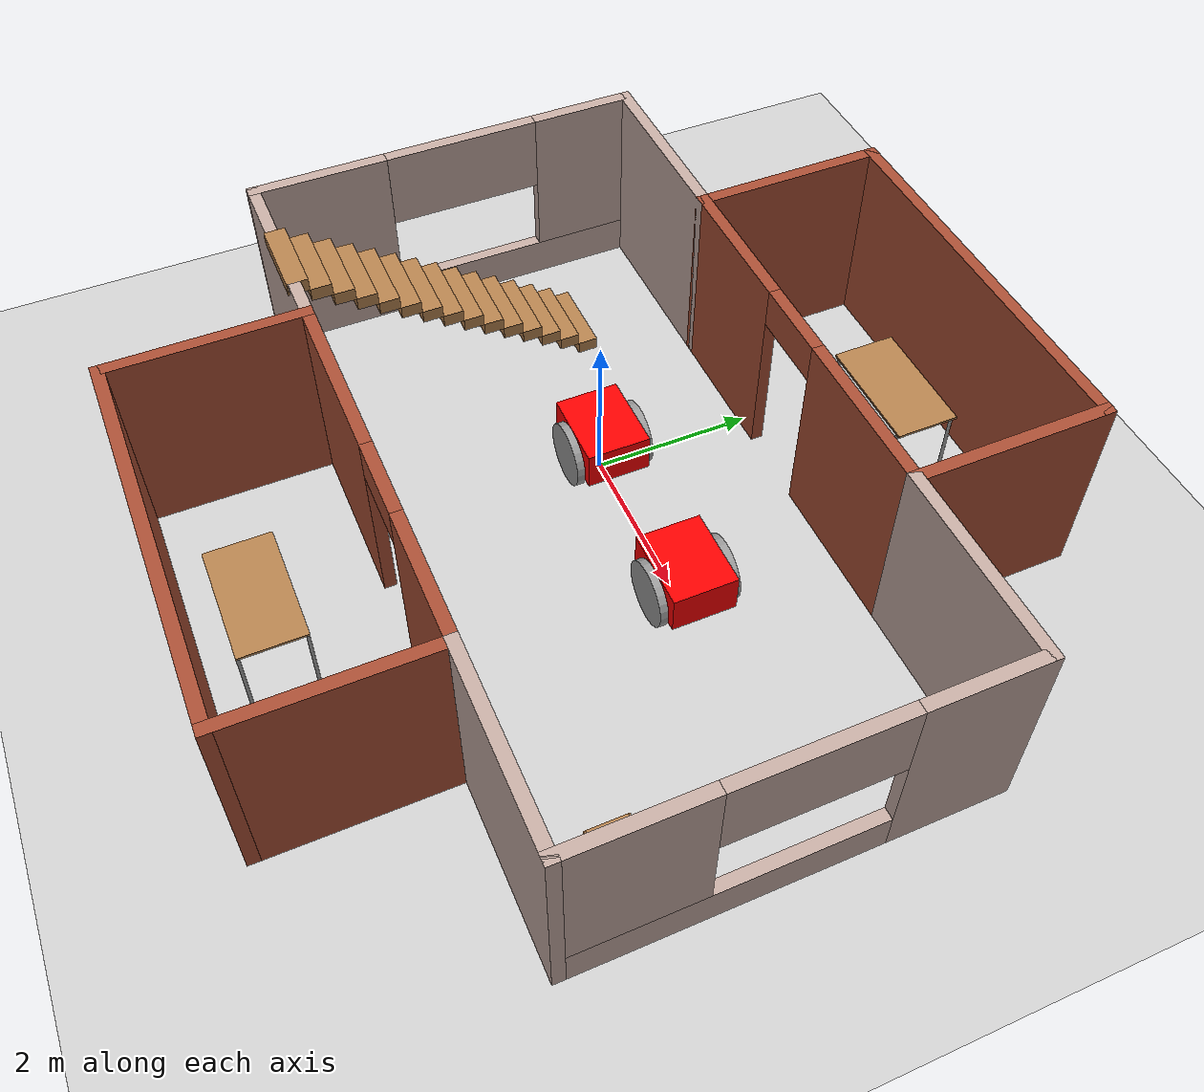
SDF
<sdf version="1.6">
 <world name="default">
  <plugin name="project1" filename="libproject1.so"/>
  <light name="sun" type="directional">
   <pose>0 0 10 0 -0 0</pose>
   <diffuse>0.8 0.8 0.8 1</diffuse>
   <specular>0.2 0.2 0.2 1</specular>
   <attenuation>
    <range>1000</range>
    <constant>0.9</constant>
    <linear>0.01</linear>
    <quadratic>0.001</quadratic>
   </attenuation>
   <direction>-0.5 0.1 -0.9</direction>
  </light>
  <model name="ground_plane">
   <static>1</static>
   <link name="link">
    <collision name="collision">
     <geometry><plane><normal>0 0 1</normal><size>100 100</size></plane></geometry>
     <surface>
      <contact><collide_bitmask>65535</collide_bitmask></contact>
      <friction><ode><mu>100</mu><mu2>50</mu2></ode></friction>
     </surface>
    </collision>
    <visual name="visual">
     <cast_shadows>0</cast_shadows>
     <geometry><plane><normal>0 0 1</normal><size>100 100</size></plane></geometry>
     <material>
      <script><uri>file://media/materials/scripts/gazebo.material</uri><name>Gazebo/Grey</name></script>
     </material>
    </visual>
   </link>
  </model>
  <gravity>0 0 -9.8</gravity>
  <magnetic_field>6e-06 2.3e-05 -4.2e-05</magnetic_field>
  <atmosphere type="adiabatic"/>
  <physics name="default_physics" default="0" type="ode">
   <max_step_size>0.001</max_step_size>
   <real_time_factor>1</real_time_factor>
   <real_time_update_rate>1000</real_time_update_rate>
  </physics>
  <scene><ambient>0.4 0.4 0.4 1</ambient><background>0.7 0.7 0.7 1</background><shadows>1</shadows></scene>
  <spherical_coordinates>
   <surface_model>EARTH_WGS84</surface_model>
   <latitude_deg>0</latitude_deg>
   <longitude_deg>0</longitude_deg>
   <elevation>0</elevation>
   <heading_deg>0</heading_deg>
  </spherical_coordinates>
  <model name="Building">
   <pose>0.986329 -0.489748 0 0 -0 0</pose>
   <link name="Stairs_0">
    <visual name="Stairs_0_Visual_0">
     <pose>-3.44318 1.16428 0.083333 0 -0 0</pose>
     <geometry><box><size>1 0.259131 0.166667</size></box></geometry>
     <material>
      <script><uri>file://media/materials/scripts/gazebo.material</uri><name>Gazebo/Wood</name></script>
      <ambient>1 1 1 1</ambient>
     </material>
     <meta><layer>0</layer></meta>
    </visual>
    <collision name="Stairs_0_Collision_0">
     <geometry><box><size>1 0.259131 0.166667</size></box></geometry>
     <pose>-3.44318 1.16428 0.083333 0 -0 0</pose>
    </collision>
    <visual name="Stairs_0_Visual_1">
     <pose>-3.44318 0.905145 0.25 0 -0 0</pose>
     <geometry><box><size>1 0.259131 0.166667</size></box></geometry>
     <material>
      <script><uri>file://media/materials/scripts/gazebo.material</uri><name>Gazebo/Wood</name></script>
      <ambient>1 1 1 1</ambient>
     </material>
     <meta><layer>0</layer></meta>
    </visual>
    <collision name="Stairs_0_Collision_1">
     <geometry><box><size>1 0.259131 0.166667</size></box></geometry>
     <pose>-3.44318 0.905145 0.25 0 -0 0</pose>
    </collision>
    <visual name="Stairs_0_Visual_2">
     <pose>-3.44318 0.646014 0.416667 0 -0 0</pose>
     <geometry><box><size>1 0.259131 0.166667</size></box></geometry>
     <material>
      <script><uri>file://media/materials/scripts/gazebo.material</uri><name>Gazebo/Wood</name></script>
      <ambient>1 1 1 1</ambient>
     </material>
     <meta><layer>0</layer></meta>
    </visual>
    <collision name="Stairs_0_Collision_2">
     <geometry><box><size>1 0.259131 0.166667</size></box></geometry>
     <pose>-3.44318 0.646014 0.416667 0 -0 0</pose>
    </collision>
    <visual name="Stairs_0_Visual_3">
     <pose>-3.44318 0.386883 0.583333 0 -0 0</pose>
     <geometry><box><size>1 0.259131 0.166667</size></box></geometry>
     <material>
      <script><uri>file://media/materials/scripts/gazebo.material</uri><name>Gazebo/Wood</name></script>
      <ambient>1 1 1 1</ambient>
     </material>
     <meta><layer>0</layer></meta>
    </visual>
    <collision name="Stairs_0_Collision_3">
     <geometry><box><size>1 0.259131 0.166667</size></box></geometry>
     <pose>-3.44318 0.386883 0.583333 0 -0 0</pose>
    </collision>
    <visual name="Stairs_0_Visual_4">
     <pose>-3.44318 0.127752 0.75 0 -0 0</pose>
     <geometry><box><size>1 0.259131 0.166667</size></box></geometry>
     <material>
      <script><uri>file://media/materials/scripts/gazebo.material</uri><name>Gazebo/Wood</name></script>
      <ambient>1 1 1 1</ambient>
     </material>
     <meta><layer>0</layer></meta>
    </visual>
    <collision name="Stairs_0_Collision_4">
     <geometry><box><size>1 0.259131 0.166667</size></box></geometry>
     <pose>-3.44318 0.127752 0.75 0 -0 0</pose>
    </collision>
    <visual name="Stairs_0_Visual_5">
     <pose>-3.44318 -0.131379 0.916667 0 -0 0</pose>
     <geometry><box><size>1 0.259131 0.166667</size></box></geometry>
     <material>
      <script><uri>file://media/materials/scripts/gazebo.material</uri><name>Gazebo/Wood</name></script>
      <ambient>1 1 1 1</ambient>
     </material>
     <meta><layer>0</layer></meta>
    </visual>
    <collision name="Stairs_0_Collision_5">
     <geometry><box><size>1 0.259131 0.166667</size></box></geometry>
     <pose>-3.44318 -0.131379 0.916667 0 -0 0</pose>
    </collision>
    <visual name="Stairs_0_Visual_6">
     <pose>-3.44318 -0.390511 1.08333 0 -0 0</pose>
     <geometry><box><size>1 0.259131 0.166667</size></box></geometry>
     <material>
      <script><uri>file://media/materials/scripts/gazebo.material</uri><name>Gazebo/Wood</name></script>
      <ambient>1 1 1 1</ambient>
     </material>
     <meta><layer>0</layer></meta>
    </visual>
    <collision name="Stairs_0_Collision_6">
     <geometry><box><size>1 0.259131 0.166667</size></box></geometry>
     <pose>-3.44318 -0.390511 1.08333 0 -0 0</pose>
    </collision>
    <visual name="Stairs_0_Visual_7">
     <pose>-3.44318 -0.649642 1.25 0 -0 0</pose>
     <geometry><box><size>1 0.259131 0.166667</size></box></geometry>
     <material>
      <script><uri>file://media/materials/scripts/gazebo.material</uri><name>Gazebo/Wood</name></script>
      <ambient>1 1 1 1</ambient>
     </material>
     <meta><layer>0</layer></meta>
    </visual>
    <collision name="Stairs_0_Collision_7">
     <geometry><box><size>1 0.259131 0.166667</size></box></geometry>
     <pose>-3.44318 -0.649642 1.25 0 -0 0</pose>
    </collision>
    <visual name="Stairs_0_Visual_8">
     <pose>-3.44318 -0.908773 1.41667 0 -0 0</pose>
     <geometry><box><size>1 0.259131 0.166667</size></box></geometry>
     <material>
      <script><uri>file://media/materials/scripts/gazebo.material</uri><name>Gazebo/Wood</name></script>
      <ambient>1 1 1 1</ambient>
     </material>
     <meta><layer>0</layer></meta>
    </visual>
    <collision name="Stairs_0_Collision_8">
     <geometry><box><size>1 0.259131 0.166667</size></box></geometry>
     <pose>-3.44318 -0.908773 1.41667 0 -0 0</pose>
    </collision>
    <visual name="Stairs_0_Visual_9">
     <pose>-3.44318 -1.1679 1.58333 0 -0 0</pose>
     <geometry><box><size>1 0.259131 0.166667</size></box></geometry>
     <material>
      <script><uri>file://media/materials/scripts/gazebo.material</uri><name>Gazebo/Wood</name></script>
      <ambient>1 1 1 1</ambient>
     </material>
     <meta><layer>0</layer></meta>
    </visual>
    <collision name="Stairs_0_Collision_9">
     <geometry><box><size>1 0.259131 0.166667</size></box></geometry>
     <pose>-3.44318 -1.1679 1.58333 0 -0 0</pose>
    </collision>
    <visual name="Stairs_0_Visual_10">
     <pose>-3.44318 -1.42704 1.75 0 -0 0</pose>
     <geometry><box><size>1 0.259131 0.166667</size></box></geometry>
     <material>
      <script><uri>file://media/materials/scripts/gazebo.material</uri><name>Gazebo/Wood</name></script>
      <ambient>1 1 1 1</ambient>
     </material>
     <meta><layer>0</layer></meta>
    </visual>
    <collision name="Stairs_0_Collision_10">
     <geometry><box><size>1 0.259131 0.166667</size></box></geometry>
     <pose>-3.44318 -1.42704 1.75 0 -0 0</pose>
    </collision>
    <visual name="Stairs_0_Visual_11">
     <pose>-3.44318 -1.68617 1.91667 0 -0 0</pose>
     <geometry><box><size>1 0.259131 0.166667</size></box></geometry>
     <material>
      <script><uri>file://media/materials/scripts/gazebo.material</uri><name>Gazebo/Wood</name></script>
      <ambient>1 1 1 1</ambient>
     </material>
     <meta><layer>0</layer></meta>
    </visual>
    <collision name="Stairs_0_Collision_11">
     <geometry><box><size>1 0.259131 0.166667</size></box></geometry>
     <pose>-3.44318 -1.68617 1.91667 0 -0 0</pose>
    </collision>
    <visual name="Stairs_0_Visual_12">
     <pose>-3.44318 -1.9453 2.08333 0 -0 0</pose>
     <geometry><box><size>1 0.259131 0.166667</size></box></geometry>
     <material>
      <script><uri>file://media/materials/scripts/gazebo.material</uri><name>Gazebo/Wood</name></script>
      <ambient>1 1 1 1</ambient>
     </material>
     <meta><layer>0</layer></meta>
    </visual>
    <collision name="Stairs_0_Collision_12">
     <geometry><box><size>1 0.259131 0.166667</size></box></geometry>
     <pose>-3.44318 -1.9453 2.08333 0 -0 0</pose>
    </collision>
    <visual name="Stairs_0_Visual_13">
     <pose>-3.44318 -2.20443 2.25 0 -0 0</pose>
     <geometry><box><size>1 0.259131 0.166667</size></box></geometry>
     <material>
      <script><uri>file://media/materials/scripts/gazebo.material</uri><name>Gazebo/Wood</name></script>
      <ambient>1 1 1 1</ambient>
     </material>
     <meta><layer>0</layer></meta>
    </visual>
    <collision name="Stairs_0_Collision_13">
     <geometry><box><size>1 0.259131 0.166667</size></box></geometry>
     <pose>-3.44318 -2.20443 2.25 0 -0 0</pose>
    </collision>
    <visual name="Stairs_0_Visual_14">
     <pose>-3.44318 -2.46356 2.41667 0 -0 0</pose>
     <geometry><box><size>1 0.259131 0.166667</size></box></geometry>
     <material>
      <script><uri>file://media/materials/scripts/gazebo.material</uri><name>Gazebo/Wood</name></script>
      <ambient>1 1 1 1</ambient>
     </material>
     <meta><layer>0</layer></meta>
    </visual>
    <collision name="Stairs_0_Collision_14">
     <geometry><box><size>1 0.259131 0.166667</size></box></geometry>
     <pose>-3.44318 -2.46356 2.41667 0 -0 0</pose>
    </collision>
   </link>
   <link name="Wall_10">
    <collision name="Wall_10_Collision">
     <geometry><box><size>2.5 0.15 2.5</size></box></geometry>
     <pose>0 0 1.25 0 -0 0</pose>
    </collision>
    <visual name="Wall_10_Visual">
     <pose>0 0 1.25 0 -0 0</pose>
     <geometry><box><size>2.5 0.15 2.5</size></box></geometry>
     <material>
      <script><uri>file://media/materials/scripts/gazebo.material</uri><name>Gazebo/Bricks</name></script>
      <ambient>1 1 1 1</ambient>
     </material>
     <meta><layer>0</layer></meta>
    </visual>
    <pose>-2.425 3.675 0 0 -0 1.5708</pose>
   </link>
   <link name="Wall_12">
    <collision name="Wall_12_Collision">
     <geometry><box><size>5 0.15 2.5</size></box></geometry>
     <pose>0 0 1.25 0 -0 0</pose>
    </collision>
    <visual name="Wall_12_Visual">
     <pose>0 0 1.25 0 -0 0</pose>
     <geometry><box><size>5 0.15 2.5</size></box></geometry>
     <material>
      <script><uri>file://media/materials/scripts/gazebo.material</uri><name>Gazebo/Bricks</name></script>
      <ambient>1 1 1 1</ambient>
     </material>
     <meta><layer>0</layer></meta>
    </visual>
    <pose>0 4.85 0 0 -0 0</pose>
   </link>
   <link name="Wall_14">
    <collision name="Wall_14_Collision">
     <geometry><box><size>2.5 0.15 2.5</size></box></geometry>
     <pose>0 0 1.25 0 -0 0</pose>
    </collision>
    <visual name="Wall_14_Visual">
     <pose>0 0 1.25 0 -0 0</pose>
     <geometry><box><size>2.5 0.15 2.5</size></box></geometry>
     <material>
      <script><uri>file://media/materials/scripts/gazebo.material</uri><name>Gazebo/Bricks</name></script>
      <ambient>1 1 1 1</ambient>
     </material>
     <meta><layer>0</layer></meta>
    </visual>
    <pose>2.425 3.675 0 0 0 -1.5708</pose>
   </link>
   <link name="Wall_15">
    <collision name="Wall_15_Collision">
     <geometry><box><size>2.5 0.15 2.5</size></box></geometry>
     <pose>0 0 1.25 0 -0 0</pose>
    </collision>
    <visual name="Wall_15_Visual">
     <pose>0 0 1.25 0 -0 0</pose>
     <geometry><box><size>2.5 0.15 2.5</size></box></geometry>
     <material>
      <script><uri>file://media/materials/scripts/gazebo.material</uri><name>Gazebo/Grey</name></script>
      <ambient>0.760784 0.662745 0.627451 1</ambient>
     </material>
     <meta><layer>0</layer></meta>
    </visual>
    <pose>3.6 2.5 0 0 -0 0</pose>
   </link>
   <link name="Wall_16">
    <pose>4.775 0 0 0 0 -1.5708</pose>
    <visual name="Wall_16_Visual_0">
     <pose>-1.8385 0 1.25 0 -0 0</pose>
     <geometry><box><size>1.473 0.15 2.5</size></box></geometry>
     <material>
      <script><uri>file://media/materials/scripts/gazebo.material</uri><name>Gazebo/Grey</name></script>
      <ambient>0.760784 0.662745 0.627451 1</ambient>
     </material>
     <meta><layer>0</layer></meta>
    </visual>
    <collision name="Wall_16_Collision_0">
     <geometry><box><size>1.473 0.15 2.5</size></box></geometry>
     <pose>-1.8385 0 1.25 0 -0 0</pose>
    </collision>
    <visual name="Wall_16_Visual_1">
     <pose>0.7365 0 0.25 0 -0 0</pose>
     <geometry><box><size>3.677 0.15 0.5</size></box></geometry>
     <material>
      <script><uri>file://media/materials/scripts/gazebo.material</uri><name>Gazebo/Grey</name></script>
      <ambient>0.760784 0.662745 0.627451 1</ambient>
     </material>
     <meta><layer>0</layer></meta>
    </visual>
    <collision name="Wall_16_Collision_1">
     <geometry><box><size>3.677 0.15 0.5</size></box></geometry>
     <pose>0.7365 0 0.25 0 -0 0</pose>
    </collision>
    <visual name="Wall_16_Visual_2">
     <pose>1.7365 0 1.5 0 -0 0</pose>
     <geometry><box><size>1.677 0.15 2</size></box></geometry>
     <material>
      <script><uri>file://media/materials/scripts/gazebo.material</uri><name>Gazebo/Grey</name></script>
      <ambient>0.760784 0.662745 0.627451 1</ambient>
     </material>
     <meta><layer>0</layer></meta>
    </visual>
    <collision name="Wall_16_Collision_2">
     <geometry><box><size>1.677 0.15 2</size></box></geometry>
     <pose>1.7365 0 1.5 0 -0 0</pose>
    </collision>
    <visual name="Wall_16_Visual_3">
     <pose>-0.102 0 2 0 -0 0</pose>
     <geometry><box><size>2 0.15 1</size></box></geometry>
     <material>
      <script><uri>file://media/materials/scripts/gazebo.material</uri><name>Gazebo/Grey</name></script>
      <ambient>0.760784 0.662745 0.627451 1</ambient>
     </material>
     <meta><layer>0</layer></meta>
    </visual>
    <collision name="Wall_16_Collision_3">
     <geometry><box><size>2 0.15 1</size></box></geometry>
     <pose>-0.102 0 2 0 -0 0</pose>
    </collision>
   </link>
   <link name="Wall_18">
    <collision name="Wall_18_Collision">
     <geometry><box><size>2.5 0.15 2.5</size></box></geometry>
     <pose>0 0 1.25 0 -0 0</pose>
    </collision>
    <visual name="Wall_18_Visual">
     <pose>0 0 1.25 0 -0 0</pose>
     <geometry><box><size>2.5 0.15 2.5</size></box></geometry>
     <material>
      <script><uri>file://media/materials/scripts/gazebo.material</uri><name>Gazebo/Grey</name></script>
      <ambient>0.760784 0.662745 0.627451 1</ambient>
     </material>
     <meta><layer>0</layer></meta>
    </visual>
    <pose>-3.6 -2.5 0 0 -0 0</pose>
   </link>
   <link name="Wall_22">
    <collision name="Wall_22_Collision">
     <geometry><box><size>2.5 0.15 2.5</size></box></geometry>
     <pose>0 0 1.25 0 -0 0</pose>
    </collision>
    <visual name="Wall_22_Visual">
     <pose>0 0 1.25 0 -0 0</pose>
     <geometry><box><size>2.5 0.15 2.5</size></box></geometry>
     <material>
      <script><uri>file://media/materials/scripts/gazebo.material</uri><name>Gazebo/Bricks</name></script>
      <ambient>1 1 1 1</ambient>
     </material>
     <meta><layer>0</layer></meta>
    </visual>
    <pose>-2.425 -3.675 0 0 0 -1.5708</pose>
   </link>
   <link name="Wall_23">
    <collision name="Wall_23_Collision">
     <geometry><box><size>5 0.15 2.5</size></box></geometry>
     <pose>0 0 1.25 0 -0 0</pose>
    </collision>
    <visual name="Wall_23_Visual">
     <pose>0 0 1.25 0 -0 0</pose>
     <geometry><box><size>5 0.15 2.5</size></box></geometry>
     <material>
      <script><uri>file://media/materials/scripts/gazebo.material</uri><name>Gazebo/Bricks</name></script>
      <ambient>1 1 1 1</ambient>
     </material>
     <meta><layer>0</layer></meta>
    </visual>
    <pose>0 -4.85 0 0 -0 0</pose>
   </link>
   <link name="Wall_26">
    <pose>0 2.5 0 0 -0 0</pose>
    <visual name="Wall_26_Visual_0">
     <pose>-1.5607 0 1.25 0 -0 0</pose>
     <geometry><box><size>1.8786 0.15 2.5</size></box></geometry>
     <material>
      <script><uri>file://media/materials/scripts/gazebo.material</uri><name>Gazebo/Bricks</name></script>
      <ambient>1 1 1 1</ambient>
     </material>
     <meta><layer>0</layer></meta>
    </visual>
    <collision name="Wall_26_Collision_0">
     <geometry><box><size>1.8786 0.15 2.5</size></box></geometry>
     <pose>-1.5607 0 1.25 0 -0 0</pose>
    </collision>
    <visual name="Wall_26_Visual_1">
     <pose>1.4393 0 1.25 0 -0 0</pose>
     <geometry><box><size>2.1214 0.15 2.5</size></box></geometry>
     <material>
      <script><uri>file://media/materials/scripts/gazebo.material</uri><name>Gazebo/Bricks</name></script>
      <ambient>1 1 1 1</ambient>
     </material>
     <meta><layer>0</layer></meta>
    </visual>
    <collision name="Wall_26_Collision_1">
     <geometry><box><size>2.1214 0.15 2.5</size></box></geometry>
     <pose>1.4393 0 1.25 0 -0 0</pose>
    </collision>
    <visual name="Wall_26_Visual_2">
     <pose>-0.1214 0 2.25 0 -0 0</pose>
     <geometry><box><size>1 0.15 0.5</size></box></geometry>
     <material>
      <script><uri>file://media/materials/scripts/gazebo.material</uri><name>Gazebo/Bricks</name></script>
      <ambient>1 1 1 1</ambient>
     </material>
     <meta><layer>0</layer></meta>
    </visual>
    <collision name="Wall_26_Collision_2">
     <geometry><box><size>1 0.15 0.5</size></box></geometry>
     <pose>-0.1214 0 2.25 0 -0 0</pose>
    </collision>
   </link>
   <link name="Wall_29">
    <collision name="Wall_29_Collision">
     <geometry><box><size>2.5 0.15 2.5</size></box></geometry>
     <pose>0 0 1.25 0 -0 0</pose>
    </collision>
    <visual name="Wall_29_Visual">
     <pose>0 0 1.25 0 -0 0</pose>
     <geometry><box><size>2.5 0.15 2.5</size></box></geometry>
     <material>
      <script><uri>file://media/materials/scripts/gazebo.material</uri><name>Gazebo/Grey</name></script>
      <ambient>0.760784 0.662745 0.627451 1</ambient>
     </material>
     <meta><layer>0</layer></meta>
    </visual>
    <pose>3.6 -2.5 0 0 -0 3.14159</pose>
   </link>
   <link name="Wall_30">
    <collision name="Wall_30_Collision">
     <geometry><box><size>2.5 0.15 2.5</size></box></geometry>
     <pose>0 0 1.25 0 -0 0</pose>
    </collision>
    <visual name="Wall_30_Visual">
     <pose>0 0 1.25 0 -0 0</pose>
     <geometry><box><size>2.5 0.15 2.5</size></box></geometry>
     <material>
      <script><uri>file://media/materials/scripts/gazebo.material</uri><name>Gazebo/Bricks</name></script>
      <ambient>0.435294 0.796078 0.67451 1</ambient>
     </material>
     <meta><layer>0</layer></meta>
    </visual>
    <pose>2.425 -3.675 0 0 0 -1.5708</pose>
   </link>
   <link name="Wall_32">
    <pose>0 -2.5 0 0 -0 0</pose>
    <visual name="Wall_32_Visual_0">
     <pose>-1.374 0 1.25 0 -0 0</pose>
     <geometry><box><size>2.252 0.15 2.5</size></box></geometry>
     <material>
      <script><uri>file://media/materials/scripts/gazebo.material</uri><name>Gazebo/Bricks</name></script>
      <ambient>0.435294 0.796078 0.67451 1</ambient>
     </material>
     <meta><layer>0</layer></meta>
    </visual>
    <collision name="Wall_32_Collision_0">
     <geometry><box><size>2.252 0.15 2.5</size></box></geometry>
     <pose>-1.374 0 1.25 0 -0 0</pose>
    </collision>
    <visual name="Wall_32_Visual_1">
     <pose>1.626 0 1.25 0 -0 0</pose>
     <geometry><box><size>1.748 0.15 2.5</size></box></geometry>
     <material>
      <script><uri>file://media/materials/scripts/gazebo.material</uri><name>Gazebo/Bricks</name></script>
      <ambient>0.435294 0.796078 0.67451 1</ambient>
     </material>
     <meta><layer>0</layer></meta>
    </visual>
    <collision name="Wall_32_Collision_1">
     <geometry><box><size>1.748 0.15 2.5</size></box></geometry>
     <pose>1.626 0 1.25 0 -0 0</pose>
    </collision>
    <visual name="Wall_32_Visual_2">
     <pose>0.252 0 2.25 0 -0 0</pose>
     <geometry><box><size>1 0.15 0.5</size></box></geometry>
     <material>
      <script><uri>file://media/materials/scripts/gazebo.material</uri><name>Gazebo/Bricks</name></script>
      <ambient>0.435294 0.796078 0.67451 1</ambient>
     </material>
     <meta><layer>0</layer></meta>
    </visual>
    <collision name="Wall_32_Collision_2">
     <geometry><box><size>1 0.15 0.5</size></box></geometry>
     <pose>0.252 0 2.25 0 -0 0</pose>
    </collision>
   </link>
   <link name="Wall_4">
    <pose>-4.775 0 0 0 -0 1.5708</pose>
    <visual name="Wall_4_Visual_0">
     <pose>-1.6905 0 1.25 0 -0 0</pose>
     <geometry><box><size>1.769 0.15 2.5</size></box></geometry>
     <material>
      <script><uri>file://media/materials/scripts/gazebo.material</uri><name>Gazebo/Grey</name></script>
      <ambient>0.760784 0.662745 0.627451 1</ambient>
     </material>
     <meta><layer>0</layer></meta>
    </visual>
    <collision name="Wall_4_Collision_0">
     <geometry><box><size>1.769 0.15 2.5</size></box></geometry>
     <pose>-1.6905 0 1.25 0 -0 0</pose>
    </collision>
    <visual name="Wall_4_Visual_1">
     <pose>0.8845 0 0.25 0 -0 0</pose>
     <geometry><box><size>3.381 0.15 0.5</size></box></geometry>
     <material>
      <script><uri>file://media/materials/scripts/gazebo.material</uri><name>Gazebo/Grey</name></script>
      <ambient>0.760784 0.662745 0.627451 1</ambient>
     </material>
     <meta><layer>0</layer></meta>
    </visual>
    <collision name="Wall_4_Collision_1">
     <geometry><box><size>3.381 0.15 0.5</size></box></geometry>
     <pose>0.8845 0 0.25 0 -0 0</pose>
    </collision>
    <visual name="Wall_4_Visual_2">
     <pose>1.8845 0 1.5 0 -0 0</pose>
     <geometry><box><size>1.381 0.15 2</size></box></geometry>
     <material>
      <script><uri>file://media/materials/scripts/gazebo.material</uri><name>Gazebo/Grey</name></script>
      <ambient>0.760784 0.662745 0.627451 1</ambient>
     </material>
     <meta><layer>0</layer></meta>
    </visual>
    <collision name="Wall_4_Collision_2">
     <geometry><box><size>1.381 0.15 2</size></box></geometry>
     <pose>1.8845 0 1.5 0 -0 0</pose>
    </collision>
    <visual name="Wall_4_Visual_3">
     <pose>0.194 0 2 0 -0 0</pose>
     <geometry><box><size>2 0.15 1</size></box></geometry>
     <material>
      <script><uri>file://media/materials/scripts/gazebo.material</uri><name>Gazebo/Grey</name></script>
      <ambient>0.760784 0.662745 0.627451 1</ambient>
     </material>
     <meta><layer>0</layer></meta>
    </visual>
    <collision name="Wall_4_Collision_3">
     <geometry><box><size>2 0.15 1</size></box></geometry>
     <pose>0.194 0 2 0 -0 0</pose>
    </collision>
   </link>
   <link name="Wall_8">
    <collision name="Wall_8_Collision">
     <geometry><box><size>2.5 0.15 2.5</size></box></geometry>
     <pose>0 0 1.25 0 -0 0</pose>
    </collision>
    <visual name="Wall_8_Visual">
     <pose>0 0 1.25 0 -0 0</pose>
     <geometry><box><size>2.5 0.15 2.5</size></box></geometry>
     <material>
      <script><uri>file://media/materials/scripts/gazebo.material</uri><name>Gazebo/Grey</name></script>
      <ambient>0.760784 0.662745 0.627451 1</ambient>
     </material>
     <meta><layer>0</layer></meta>
    </visual>
    <pose>-3.6 2.5 0 0 -0 0</pose>
   </link>
   <static>1</static>
  </model>
  <model name="HumanoidRobot">
   <link name="link_0">
    <pose>-0.006351 0.548901 0.5 0 -0 0</pose>
    <inertial>
     <mass>1</mass>
     <inertia>
      <ixx>0.166667</ixx>
      <ixy>0</ixy>
      <ixz>0</ixz>
      <iyy>0.166667</iyy>
      <iyz>0</iyz>
      <izz>0.166667</izz>
     </inertia>
    </inertial>
    <visual name="visual">
     <geometry><box><size>1 0.8 0.5</size></box></geometry>
     <material>
      <lighting>1</lighting>
      <script><uri>file://media/materials/scripts/gazebo.material</uri><name>Gazebo/Grey</name></script>
      <shader type="pixel"><normal_map>__default__</normal_map></shader>
      <ambient>1 0 0 0</ambient>
      <diffuse>1 0 0 0</diffuse>
      <specular>1 0 0 0</specular>
      <emissive>0 0 0 1</emissive>
     </material>
    </visual>
    <collision name="collision">
     <geometry><box><size>1 0.8 0.5</size></box></geometry>
     <surface>
      <friction>
       <ode><mu>1</mu><mu2>1</mu2><fdir1>0 0 0</fdir1><slip1>0</slip1><slip2>0</slip2></ode>
       <torsional>
        <coefficient>1</coefficient>
        <patch_radius>0</patch_radius>
        <surface_radius>0</surface_radius>
        <use_patch_radius>1</use_patch_radius>
        <ode><slip>0</slip></ode>
       </torsional>
      </friction>
      <bounce><restitution_coefficient>0</restitution_coefficient><threshold>1e+06</threshold></bounce>
      <contact>
       <collide_without_contact>0</collide_without_contact>
       <collide_without_contact_bitmask>1</collide_without_contact_bitmask>
       <collide_bitmask>1</collide_bitmask>
       <ode>
        <soft_cfm>0</soft_cfm>
        <soft_erp>0.2</soft_erp>
        <kp>1e+13</kp>
        <kd>1</kd>
        <max_vel>0.01</max_vel>
        <min_depth>0</min_depth>
       </ode>
       <bullet>
        <split_impulse>1</split_impulse>
        <split_impulse_penetration_threshold>-0.01</split_impulse_penetration_threshold>
        <soft_cfm>0</soft_cfm>
        <soft_erp>0.2</soft_erp>
        <kp>1e+13</kp>
        <kd>1</kd>
       </bullet>
      </contact>
     </surface>
    </collision>
   </link>
   <link name="link_1">
    <pose>-0.006351 0.998903 0.35 0 -0 0</pose>
    <inertial>
     <mass>1</mass>
     <inertia><ixx>0.145833</ixx><ixy>0</ixy><ixz>0</ixz><iyy>0.145833</iyy><iyz>0</iyz><izz>0.125</izz></inertia>
    </inertial>
    <visual name="visual">
     <pose>0 0 0 1.5708 -0 0</pose>
     <geometry><cylinder><radius>0.4</radius><length>0.1</length></cylinder></geometry>
     <material>
      <lighting>1</lighting>
      <script><uri>file://media/materials/scripts/gazebo.material</uri><name>Gazebo/Grey</name></script>
      <shader type="pixel"><normal_map>__default__</normal_map></shader>
      <ambient>0.3 0.3 0.3 1</ambient>
      <diffuse>0.7 0.7 0.7 1</diffuse>
      <specular>0.01 0.01 0.01 1</specular>
      <emissive>0 0 0 1</emissive>
     </material>
    </visual>
    <collision name="collision">
     <pose>0 0 0 1.5708 -0 0</pose>
     <geometry><cylinder><radius>0.4</radius><length>0.1</length></cylinder></geometry>
     <surface>
      <friction>
       <ode><mu>1</mu><mu2>1</mu2><fdir1>0 0 0</fdir1><slip1>0</slip1><slip2>0</slip2></ode>
       <torsional>
        <coefficient>1</coefficient>
        <patch_radius>0</patch_radius>
        <surface_radius>0</surface_radius>
        <use_patch_radius>1</use_patch_radius>
        <ode><slip>0</slip></ode>
       </torsional>
      </friction>
      <bounce><restitution_coefficient>0</restitution_coefficient><threshold>1e+06</threshold></bounce>
      <contact>
       <collide_without_contact>0</collide_without_contact>
       <collide_without_contact_bitmask>1</collide_without_contact_bitmask>
       <collide_bitmask>1</collide_bitmask>
       <ode>
        <soft_cfm>0</soft_cfm>
        <soft_erp>0.2</soft_erp>
        <kp>1e+13</kp>
        <kd>1</kd>
        <max_vel>0.01</max_vel>
        <min_depth>0</min_depth>
       </ode>
       <bullet>
        <split_impulse>1</split_impulse>
        <split_impulse_penetration_threshold>-0.01</split_impulse_penetration_threshold>
        <soft_cfm>0</soft_cfm>
        <soft_erp>0.2</soft_erp>
        <kp>1e+13</kp>
        <kd>1</kd>
       </bullet>
      </contact>
     </surface>
    </collision>
   </link>
   <link name="link_1_clone">
    <pose>-0.006351 0.0989 0.35 0 -0 0</pose>
    <inertial>
     <mass>1</mass>
     <inertia><ixx>0.145833</ixx><ixy>0</ixy><ixz>0</ixz><iyy>0.145833</iyy><iyz>0</iyz><izz>0.125</izz></inertia>
    </inertial>
    <visual name="visual">
     <pose>0 0 0 1.5708 -0 0</pose>
     <geometry><cylinder><radius>0.4</radius><length>0.1</length></cylinder></geometry>
     <material>
      <lighting>1</lighting>
      <script><uri>file://media/materials/scripts/gazebo.material</uri><name>Gazebo/Grey</name></script>
      <shader type="pixel"><normal_map>__default__</normal_map></shader>
      <ambient>0.3 0.3 0.3 1</ambient>
      <diffuse>0.7 0.7 0.7 1</diffuse>
      <specular>0.01 0.01 0.01 1</specular>
      <emissive>0 0 0 1</emissive>
     </material>
    </visual>
    <collision name="collision">
     <pose>0 0 0 1.5708 -0 0</pose>
     <geometry><cylinder><radius>0.4</radius><length>0.1</length></cylinder></geometry>
     <surface>
      <friction>
       <ode><mu>1</mu><mu2>1</mu2><fdir1>0 0 0</fdir1><slip1>0</slip1><slip2>0</slip2></ode>
       <torsional>
        <coefficient>1</coefficient>
        <patch_radius>0</patch_radius>
        <surface_radius>0</surface_radius>
        <use_patch_radius>1</use_patch_radius>
        <ode><slip>0</slip></ode>
       </torsional>
      </friction>
      <bounce><restitution_coefficient>0</restitution_coefficient><threshold>1e+06</threshold></bounce>
      <contact>
       <collide_without_contact>0</collide_without_contact>
       <collide_without_contact_bitmask>1</collide_without_contact_bitmask>
       <collide_bitmask>1</collide_bitmask>
       <ode>
        <soft_cfm>0</soft_cfm>
        <soft_erp>0.2</soft_erp>
        <kp>1e+13</kp>
        <kd>1</kd>
        <max_vel>0.01</max_vel>
        <min_depth>0</min_depth>
       </ode>
       <bullet>
        <split_impulse>1</split_impulse>
        <split_impulse_penetration_threshold>-0.01</split_impulse_penetration_threshold>
        <soft_cfm>0</soft_cfm>
        <soft_erp>0.2</soft_erp>
        <kp>1e+13</kp>
        <kd>1</kd>
       </bullet>
      </contact>
     </surface>
    </collision>
   </link>
   <joint name="link_0_JOINT_0" type="revolute">
    <parent>link_0</parent>
    <child>link_1</child>
    <axis>
     <xyz>0 0 1</xyz>
     <use_parent_model_frame>0</use_parent_model_frame>
     <limit>
      <lower>-1.79769e+308</lower>
      <upper>1.79769e+308</upper>
      <effort>-1</effort>
      <velocity>-1</velocity>
     </limit>
     <dynamics>
      <spring_reference>0</spring_reference>
      <spring_stiffness>0</spring_stiffness>
      <damping>0</damping>
     </dynamics>
    </axis>
    <physics>
     <ode><limit><cfm>0</cfm><erp>0.2</erp></limit><suspension><cfm>0</cfm><erp>0.2</erp></suspension></ode>
    </physics>
   </joint>
   <joint name="link_0_JOINT_2" type="revolute">
    <parent>link_0</parent>
    <child>link_1_clone</child>
    <axis>
     <xyz>0 0 1</xyz>
     <use_parent_model_frame>0</use_parent_model_frame>
     <limit>
      <lower>-1.79769e+308</lower>
      <upper>1.79769e+308</upper>
      <effort>-1</effort>
      <velocity>-1</velocity>
     </limit>
     <dynamics>
      <spring_reference>0</spring_reference>
      <spring_stiffness>0</spring_stiffness>
      <damping>0</damping>
     </dynamics>
    </axis>
    <physics>
     <ode><limit><cfm>0</cfm><erp>0.2</erp></limit><suspension><cfm>0</cfm><erp>0.2</erp></suspension></ode>
    </physics>
   </joint>
   <static>0</static>
   <pose>-0.005222 -0.516177 0.05 -2e-06 0 0</pose>
  </model>
  <model name="HumanoidRobot_0">
   <link name="link_0">
    <pose>-0.006351 0.548901 0.5 0 -0 0</pose>
    <inertial>
     <mass>1</mass>
     <inertia>
      <ixx>0.166667</ixx>
      <ixy>0</ixy>
      <ixz>0</ixz>
      <iyy>0.166667</iyy>
      <iyz>0</iyz>
      <izz>0.166667</izz>
     </inertia>
    </inertial>
    <visual name="visual">
     <geometry><box><size>1 0.8 0.5</size></box></geometry>
     <material>
      <lighting>1</lighting>
      <script><uri>file://media/materials/scripts/gazebo.material</uri><name>Gazebo/Grey</name></script>
      <shader type="pixel"><normal_map>__default__</normal_map></shader>
      <ambient>1 0 0 0</ambient>
      <diffuse>1 0 0 0</diffuse>
      <specular>1 0 0 0</specular>
      <emissive>0 0 0 1</emissive>
     </material>
    </visual>
    <collision name="collision">
     <geometry><box><size>1 0.8 0.5</size></box></geometry>
     <surface>
      <friction>
       <ode><mu>1</mu><mu2>1</mu2><fdir1>0 0 0</fdir1><slip1>0</slip1><slip2>0</slip2></ode>
       <torsional>
        <coefficient>1</coefficient>
        <patch_radius>0</patch_radius>
        <surface_radius>0</surface_radius>
        <use_patch_radius>1</use_patch_radius>
        <ode><slip>0</slip></ode>
       </torsional>
      </friction>
      <bounce><restitution_coefficient>0</restitution_coefficient><threshold>1e+06</threshold></bounce>
      <contact>
       <collide_without_contact>0</collide_without_contact>
       <collide_without_contact_bitmask>1</collide_without_contact_bitmask>
       <collide_bitmask>1</collide_bitmask>
       <ode>
        <soft_cfm>0</soft_cfm>
        <soft_erp>0.2</soft_erp>
        <kp>1e+13</kp>
        <kd>1</kd>
        <max_vel>0.01</max_vel>
        <min_depth>0</min_depth>
       </ode>
       <bullet>
        <split_impulse>1</split_impulse>
        <split_impulse_penetration_threshold>-0.01</split_impulse_penetration_threshold>
        <soft_cfm>0</soft_cfm>
        <soft_erp>0.2</soft_erp>
        <kp>1e+13</kp>
        <kd>1</kd>
       </bullet>
      </contact>
     </surface>
    </collision>
   </link>
   <link name="link_1">
    <pose>-0.006351 0.998903 0.35 0 -0 0</pose>
    <inertial>
     <mass>1</mass>
     <inertia><ixx>0.145833</ixx><ixy>0</ixy><ixz>0</ixz><iyy>0.145833</iyy><iyz>0</iyz><izz>0.125</izz></inertia>
    </inertial>
    <visual name="visual">
     <pose>0 0 0 1.5708 -0 0</pose>
     <geometry><cylinder><radius>0.4</radius><length>0.1</length></cylinder></geometry>
     <material>
      <lighting>1</lighting>
      <script><uri>file://media/materials/scripts/gazebo.material</uri><name>Gazebo/Grey</name></script>
      <shader type="pixel"><normal_map>__default__</normal_map></shader>
      <ambient>0.3 0.3 0.3 1</ambient>
      <diffuse>0.7 0.7 0.7 1</diffuse>
      <specular>0.01 0.01 0.01 1</specular>
      <emissive>0 0 0 1</emissive>
     </material>
    </visual>
    <collision name="collision">
     <pose>0 0 0 1.5708 -0 0</pose>
     <geometry><cylinder><radius>0.4</radius><length>0.1</length></cylinder></geometry>
     <surface>
      <friction>
       <ode><mu>1</mu><mu2>1</mu2><fdir1>0 0 0</fdir1><slip1>0</slip1><slip2>0</slip2></ode>
       <torsional>
        <coefficient>1</coefficient>
        <patch_radius>0</patch_radius>
        <surface_radius>0</surface_radius>
        <use_patch_radius>1</use_patch_radius>
        <ode><slip>0</slip></ode>
       </torsional>
      </friction>
      <bounce><restitution_coefficient>0</restitution_coefficient><threshold>1e+06</threshold></bounce>
      <contact>
       <collide_without_contact>0</collide_without_contact>
       <collide_without_contact_bitmask>1</collide_without_contact_bitmask>
       <collide_bitmask>1</collide_bitmask>
       <ode>
        <soft_cfm>0</soft_cfm>
        <soft_erp>0.2</soft_erp>
        <kp>1e+13</kp>
        <kd>1</kd>
        <max_vel>0.01</max_vel>
        <min_depth>0</min_depth>
       </ode>
       <bullet>
        <split_impulse>1</split_impulse>
        <split_impulse_penetration_threshold>-0.01</split_impulse_penetration_threshold>
        <soft_cfm>0</soft_cfm>
        <soft_erp>0.2</soft_erp>
        <kp>1e+13</kp>
        <kd>1</kd>
       </bullet>
      </contact>
     </surface>
    </collision>
   </link>
   <link name="link_1_clone">
    <pose>-0.006351 0.0989 0.35 0 -0 0</pose>
    <inertial>
     <mass>1</mass>
     <inertia><ixx>0.145833</ixx><ixy>0</ixy><ixz>0</ixz><iyy>0.145833</iyy><iyz>0</iyz><izz>0.125</izz></inertia>
    </inertial>
    <visual name="visual">
     <pose>0 0 0 1.5708 -0 0</pose>
     <geometry><cylinder><radius>0.4</radius><length>0.1</length></cylinder></geometry>
     <material>
      <lighting>1</lighting>
      <script><uri>file://media/materials/scripts/gazebo.material</uri><name>Gazebo/Grey</name></script>
      <shader type="pixel"><normal_map>__default__</normal_map></shader>
      <ambient>0.3 0.3 0.3 1</ambient>
      <diffuse>0.7 0.7 0.7 1</diffuse>
      <specular>0.01 0.01 0.01 1</specular>
      <emissive>0 0 0 1</emissive>
     </material>
    </visual>
    <collision name="collision">
     <pose>0 0 0 1.5708 -0 0</pose>
     <geometry><cylinder><radius>0.4</radius><length>0.1</length></cylinder></geometry>
     <surface>
      <friction>
       <ode><mu>1</mu><mu2>1</mu2><fdir1>0 0 0</fdir1><slip1>0</slip1><slip2>0</slip2></ode>
       <torsional>
        <coefficient>1</coefficient>
        <patch_radius>0</patch_radius>
        <surface_radius>0</surface_radius>
        <use_patch_radius>1</use_patch_radius>
        <ode><slip>0</slip></ode>
       </torsional>
      </friction>
      <bounce><restitution_coefficient>0</restitution_coefficient><threshold>1e+06</threshold></bounce>
      <contact>
       <collide_without_contact>0</collide_without_contact>
       <collide_without_contact_bitmask>1</collide_without_contact_bitmask>
       <collide_bitmask>1</collide_bitmask>
       <ode>
        <soft_cfm>0</soft_cfm>
        <soft_erp>0.2</soft_erp>
        <kp>1e+13</kp>
        <kd>1</kd>
        <max_vel>0.01</max_vel>
        <min_depth>0</min_depth>
       </ode>
       <bullet>
        <split_impulse>1</split_impulse>
        <split_impulse_penetration_threshold>-0.01</split_impulse_penetration_threshold>
        <soft_cfm>0</soft_cfm>
        <soft_erp>0.2</soft_erp>
        <kp>1e+13</kp>
        <kd>1</kd>
       </bullet>
      </contact>
     </surface>
    </collision>
   </link>
   <joint name="link_0_JOINT_0" type="revolute">
    <parent>link_0</parent>
    <child>link_1</child>
    <axis>
     <xyz>0 0 1</xyz>
     <use_parent_model_frame>0</use_parent_model_frame>
     <limit>
      <lower>-1.79769e+308</lower>
      <upper>1.79769e+308</upper>
      <effort>-1</effort>
      <velocity>-1</velocity>
     </limit>
     <dynamics>
      <spring_reference>0</spring_reference>
      <spring_stiffness>0</spring_stiffness>
      <damping>0</damping>
     </dynamics>
    </axis>
    <physics>
     <ode><limit><cfm>0</cfm><erp>0.2</erp></limit><suspension><cfm>0</cfm><erp>0.2</erp></suspension></ode>
    </physics>
   </joint>
   <joint name="link_0_JOINT_2" type="revolute">
    <parent>link_0</parent>
    <child>link_1_clone</child>
    <axis>
     <xyz>0 0 1</xyz>
     <use_parent_model_frame>0</use_parent_model_frame>
     <limit>
      <lower>-1.79769e+308</lower>
      <upper>1.79769e+308</upper>
      <effort>-1</effort>
      <velocity>-1</velocity>
     </limit>
     <dynamics>
      <spring_reference>0</spring_reference>
      <spring_stiffness>0</spring_stiffness>
      <damping>0</damping>
     </dynamics>
    </axis>
    <physics>
     <ode><limit><cfm>0</cfm><erp>0.2</erp></limit><suspension><cfm>0</cfm><erp>0.2</erp></suspension></ode>
    </physics>
   </joint>
   <static>0</static>
   <pose>2.28945 -0.496265 0.050001 -2e-06 0 0</pose>
  </model>
  <model name="table">
   <static>1</static>
   <link name="link">
    <collision name="surface">
     <pose>0 0 1 0 -0 0</pose>
     <geometry><box><size>1.5 0.8 0.03</size></box></geometry>
     <surface><friction><ode><mu>0.6</mu><mu2>0.6</mu2></ode></friction></surface>
    </collision>
    <visual name="visual1">
     <pose>0 0 1 0 -0 0</pose>
     <geometry><box><size>1.5 0.8 0.03</size></box></geometry>
     <material>
      <script><uri>file://media/materials/scripts/gazebo.material</uri><name>Gazebo/Wood</name></script>
     </material>
    </visual>
    <collision name="front_left_leg">
     <pose>0.68 0.38 0.5 0 -0 0</pose>
     <geometry><cylinder><radius>0.02</radius><length>1</length></cylinder></geometry>
    </collision>
    <visual name="front_left_leg">
     <pose>0.68 0.38 0.5 0 -0 0</pose>
     <geometry><cylinder><radius>0.02</radius><length>1</length></cylinder></geometry>
     <material>
      <script><uri>file://media/materials/scripts/gazebo.material</uri><name>Gazebo/Grey</name></script>
     </material>
    </visual>
    <collision name="front_right_leg">
     <pose>0.68 -0.38 0.5 0 -0 0</pose>
     <geometry><cylinder><radius>0.02</radius><length>1</length></cylinder></geometry>
    </collision>
    <visual name="front_right_leg">
     <pose>0.68 -0.38 0.5 0 -0 0</pose>
     <geometry><cylinder><radius>0.02</radius><length>1</length></cylinder></geometry>
     <material>
      <script><uri>file://media/materials/scripts/gazebo.material</uri><name>Gazebo/Grey</name></script>
     </material>
    </visual>
    <collision name="back_right_leg">
     <pose>-0.68 -0.38 0.5 0 -0 0</pose>
     <geometry><cylinder><radius>0.02</radius><length>1</length></cylinder></geometry>
    </collision>
    <visual name="back_right_leg">
     <pose>-0.68 -0.38 0.5 0 -0 0</pose>
     <geometry><cylinder><radius>0.02</radius><length>1</length></cylinder></geometry>
     <material>
      <script><uri>file://media/materials/scripts/gazebo.material</uri><name>Gazebo/Grey</name></script>
     </material>
    </visual>
    <collision name="back_left_leg">
     <pose>-0.68 0.38 0.5 0 -0 0</pose>
     <geometry><cylinder><radius>0.02</radius><length>1</length></cylinder></geometry>
    </collision>
    <visual name="back_left_leg">
     <pose>-0.68 0.38 0.5 0 -0 0</pose>
     <geometry><cylinder><radius>0.02</radius><length>1</length></cylinder></geometry>
     <material>
      <script><uri>file://media/materials/scripts/gazebo.material</uri><name>Gazebo/Grey</name></script>
     </material>
    </visual>
   </link>
   <pose>1.05927 3.45227 0 0 -0 0</pose>
  </model>
  <model name="table_0">
   <static>1</static>
   <link name="link">
    <collision name="surface">
     <pose>0 0 1 0 -0 0</pose>
     <geometry><box><size>1.5 0.8 0.03</size></box></geometry>
     <surface><friction><ode><mu>0.6</mu><mu2>0.6</mu2></ode></friction></surface>
    </collision>
    <visual name="visual1">
     <pose>0 0 1 0 -0 0</pose>
     <geometry><box><size>1.5 0.8 0.03</size></box></geometry>
     <material>
      <script><uri>file://media/materials/scripts/gazebo.material</uri><name>Gazebo/Wood</name></script>
     </material>
    </visual>
    <collision name="front_left_leg">
     <pose>0.68 0.38 0.5 0 -0 0</pose>
     <geometry><cylinder><radius>0.02</radius><length>1</length></cylinder></geometry>
    </collision>
    <visual name="front_left_leg">
     <pose>0.68 0.38 0.5 0 -0 0</pose>
     <geometry><cylinder><radius>0.02</radius><length>1</length></cylinder></geometry>
     <material>
      <script><uri>file://media/materials/scripts/gazebo.material</uri><name>Gazebo/Grey</name></script>
     </material>
    </visual>
    <collision name="front_right_leg">
     <pose>0.68 -0.38 0.5 0 -0 0</pose>
     <geometry><cylinder><radius>0.02</radius><length>1</length></cylinder></geometry>
    </collision>
    <visual name="front_right_leg">
     <pose>0.68 -0.38 0.5 0 -0 0</pose>
     <geometry><cylinder><radius>0.02</radius><length>1</length></cylinder></geometry>
     <material>
      <script><uri>file://media/materials/scripts/gazebo.material</uri><name>Gazebo/Grey</name></script>
     </material>
    </visual>
    <collision name="back_right_leg">
     <pose>-0.68 -0.38 0.5 0 -0 0</pose>
     <geometry><cylinder><radius>0.02</radius><length>1</length></cylinder></geometry>
    </collision>
    <visual name="back_right_leg">
     <pose>-0.68 -0.38 0.5 0 -0 0</pose>
     <geometry><cylinder><radius>0.02</radius><length>1</length></cylinder></geometry>
     <material>
      <script><uri>file://media/materials/scripts/gazebo.material</uri><name>Gazebo/Grey</name></script>
     </material>
    </visual>
    <collision name="back_left_leg">
     <pose>-0.68 0.38 0.5 0 -0 0</pose>
     <geometry><cylinder><radius>0.02</radius><length>1</length></cylinder></geometry>
    </collision>
    <visual name="back_left_leg">
     <pose>-0.68 0.38 0.5 0 -0 0</pose>
     <geometry><cylinder><radius>0.02</radius><length>1</length></cylinder></geometry>
     <material>
      <script><uri>file://media/materials/scripts/gazebo.material</uri><name>Gazebo/Grey</name></script>
     </material>
    </visual>
   </link>
   <pose>0.993577 -4.49917 0 0 -0 0</pose>
  </model>
  <model name="cabinet">
   <static>1</static>
   <link name="cabinet_bottom_plate">
    <inertial>
     <pose>0 0 -1 0 -0 0</pose>
     <inertia><ixx>2.05</ixx><ixy>0</ixy><ixz>0</ixz><iyy>2.05</iyy><iyz>0</iyz><izz>2.05</izz></inertia>
     <mass>25</mass>
    </inertial>
    <collision name="cabinet_bottom_plate_geom">
     <pose>0 0 0.01 0 -0 0</pose>
     <geometry><box><size>0.45 0.45 0.02</size></box></geometry>
    </collision>
    <visual name="cabinet_bottom_plate_geom_visual">
     <pose>0 0 0.01 0 -0 0</pose>
     <geometry><box><size>0.45 0.45 0.02</size></box></geometry>
     <material>
      <script><uri>file://media/materials/scripts/gazebo.material</uri><name>Gazebo/Wood</name></script>
     </material>
    </visual>
    <collision name="cabinet_bottom_plate_geom_cabinet_back_plate">
     <pose>0.235 0 0.51 0 -0 0</pose>
     <geometry><box><size>0.02 0.45 1.02</size></box></geometry>
    </collision>
    <visual name="cabinet_bottom_plate_geom_cabinet_back_plate_visual">
     <pose>0.235 0 0.51 0 -0 0</pose>
     <geometry><box><size>0.02 0.45 1.02</size></box></geometry>
     <material>
      <script><uri>file://media/materials/scripts/gazebo.material</uri><name>Gazebo/Wood</name></script>
     </material>
    </visual>
    <collision name="cabinet_bottom_plate_geom_cabinet_left_plate">
     <pose>0 0.235 0.51 0 -0 0</pose>
     <geometry><box><size>0.45 0.02 1.02</size></box></geometry>
    </collision>
    <visual name="cabinet_bottom_plate_geom_cabinet_left_plate_visual">
     <pose>0 0.235 0.51 0 -0 0</pose>
     <geometry><box><size>0.45 0.02 1.02</size></box></geometry>
     <material>
      <script><uri>file://media/materials/scripts/gazebo.material</uri><name>Gazebo/Wood</name></script>
     </material>
    </visual>
    <collision name="cabinet_bottom_plate_geom_cabinet_middle_plate">
     <pose>0 0 0.51 0 -0 0</pose>
     <geometry><box><size>0.45 0.45 0.02</size></box></geometry>
    </collision>
    <visual name="cabinet_bottom_plate_geom_cabinet_middle_plate_visual">
     <pose>0 0 0.51 0 -0 0</pose>
     <geometry><box><size>0.45 0.45 0.02</size></box></geometry>
     <material>
      <script><uri>file://media/materials/scripts/gazebo.material</uri><name>Gazebo/Wood</name></script>
     </material>
    </visual>
    <collision name="cabinet_bottom_plate_geom_cabinet_right_plate">
     <pose>0 -0.235 0.51 0 -0 0</pose>
     <geometry><box><size>0.45 0.02 1.02</size></box></geometry>
    </collision>
    <visual name="cabinet_bottom_plate_geom_cabinet_right_plate_visual">
     <pose>0 -0.235 0.51 0 -0 0</pose>
     <geometry><box><size>0.45 0.02 1.02</size></box></geometry>
     <material>
      <script><uri>file://media/materials/scripts/gazebo.material</uri><name>Gazebo/Wood</name></script>
     </material>
    </visual>
    <collision name="cabinet_bottom_plate_geom_cabinet_top_plate">
     <pose>0 0 1.01 0 -0 0</pose>
     <geometry><box><size>0.45 0.45 0.02</size></box></geometry>
    </collision>
    <visual name="cabinet_bottom_plate_geom_cabinet_top_plate_visual">
     <pose>0 0 1.01 0 -0 0</pose>
     <geometry><box><size>0.45 0.45 0.02</size></box></geometry>
     <material>
      <script><uri>file://media/materials/scripts/gazebo.material</uri><name>Gazebo/Wood</name></script>
     </material>
    </visual>
   </link>
   <pose>5.1923 -2.11201 0 0 -0 0</pose>
  </model>
 </world>
</sdf>
